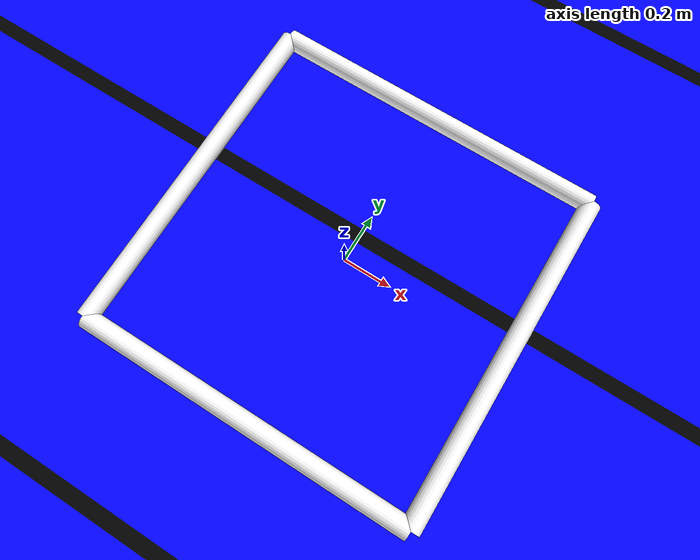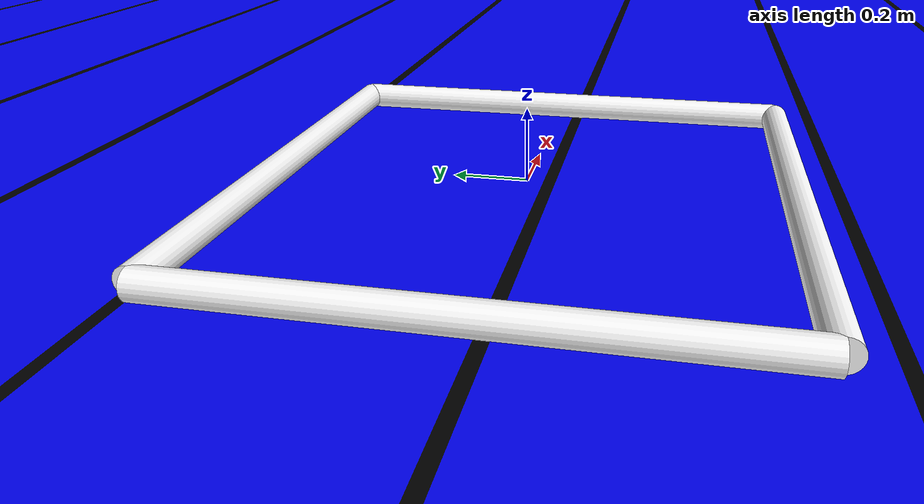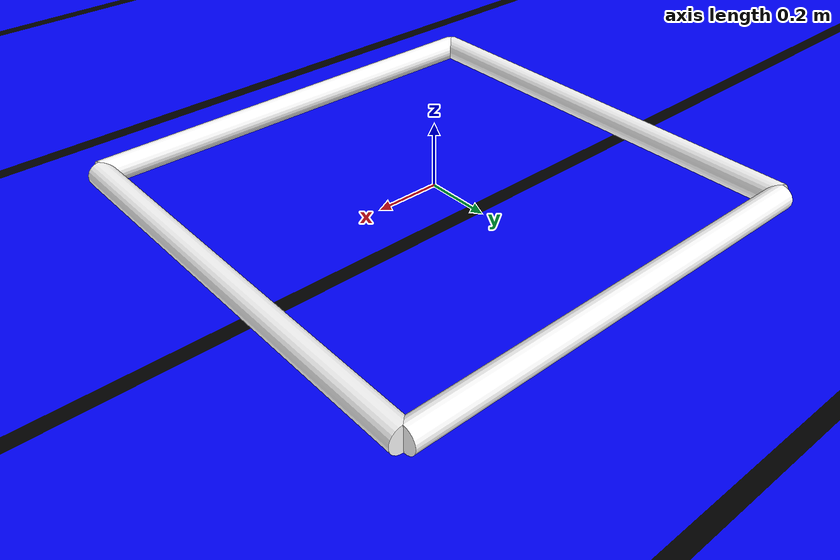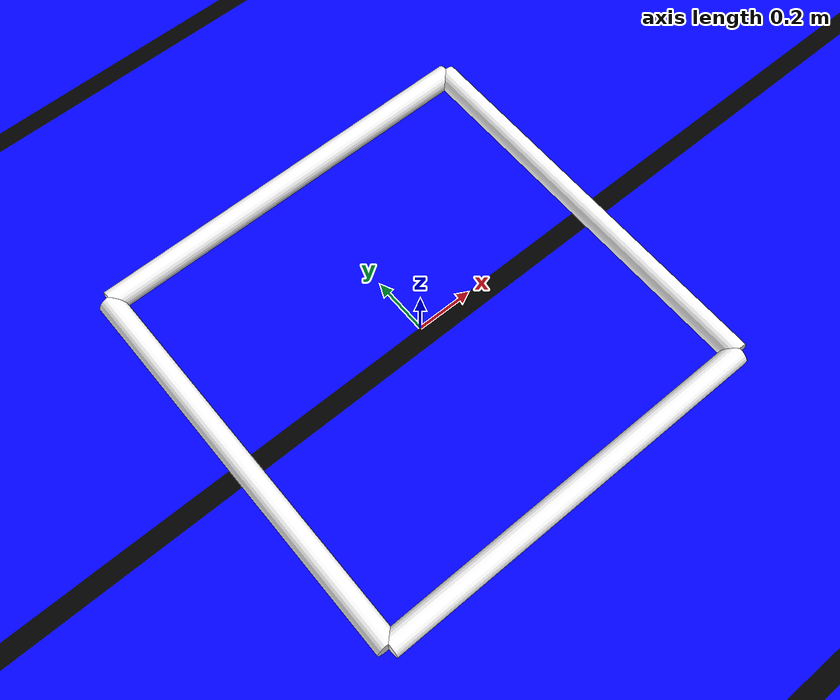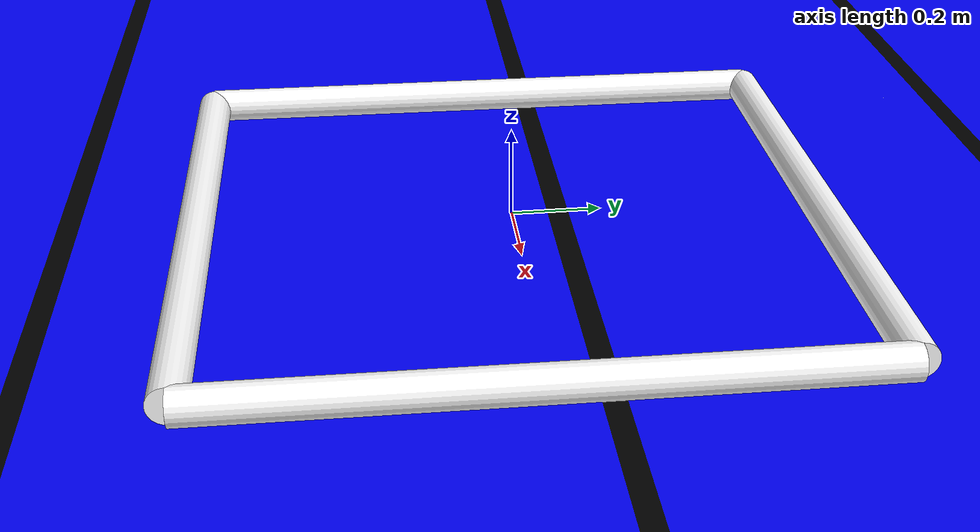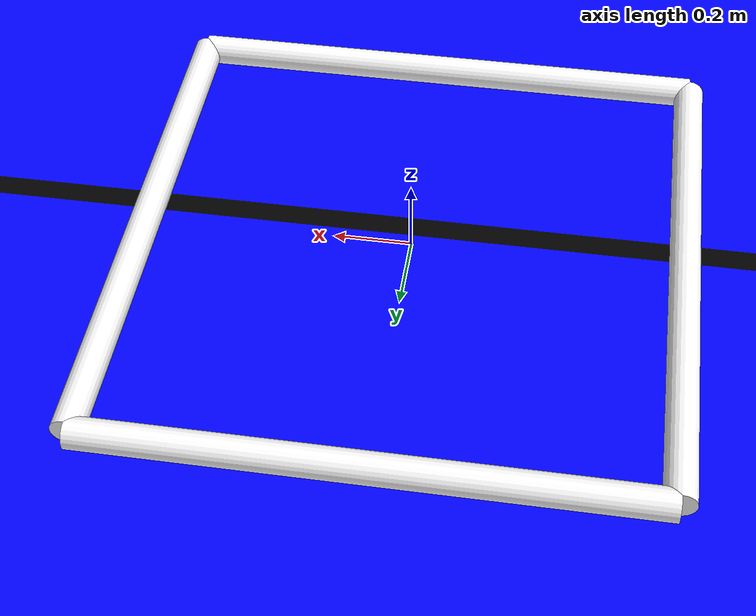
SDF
<sdf version="1.5">
 <world name="sauvc">
  <include><uri>model://sun</uri></include>
  <model name="sauvc pool"><include><uri>model://sauvc pool</uri><pose>0 0 -1.4 0 0 0</pose></include></model>
  <model name="starting_zone"><include><uri>model://starting_zone</uri></include></model>
 </world>
</sdf>

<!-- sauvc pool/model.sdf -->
<sdf version='1.6'>
  <model name='sauvc pool'>
    <link name='pool'>
      <gravity>0</gravity>
      <pose>0 0 0 0 0 0</pose>
      <collision name ='pool_collision'>
        <geometry>
          <mesh>
            <uri>model://sauvc pool/meshes/pool.dae</uri>
          </mesh>
        </geometry>
      </collision>
      <visual name='pool_visual'>
        <geometry>
          <mesh>
            <uri>model://sauvc pool/meshes/pool.dae</uri>
          </mesh>
        </geometry>
      </visual>
    </link>
    <static>true</static>
  </model>
</sdf>

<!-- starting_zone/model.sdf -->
<sdf version="1.7">

  <!-- Starting zone (four white posts forming a 1.4 m x 1.4 m square) -->
  <model name="starting_zone">
    <pose>0 0 0 0 0 0</pose>
    <static>1</static>

    <link name="post_front_left">
      <pose>-0.7 0 0 1.5708 0 0</pose>
      <visual name="visual">
        <geometry>
          <cylinder>
            <radius>0.04</radius>
            <length>1.4</length>
          </cylinder>
        </geometry>
        <material>
          <ambient>1 1 1 1</ambient>
          <diffuse>1 1 1 1</diffuse>
        </material>
      </visual>
    </link>

    <link name="post_front_right">
      <pose>0.7 0 0 1.5708 0 0</pose>
      <visual name="visual">
        <geometry>
          <cylinder>
            <radius>0.04</radius>
            <length>1.4</length>
          </cylinder>
        </geometry>
        <material>
          <ambient>1 1 1 1</ambient>
          <diffuse>1 1 1 1</diffuse>
        </material>
      </visual>
    </link>

    <link name="post_back_left">
      <pose>0 -0.7 0 0 1.5708 0</pose>
      <visual name="visual">
        <geometry>
          <cylinder>
            <radius>0.04</radius>
            <length>1.4</length>
          </cylinder>
        </geometry>
        <material>
          <ambient>1 1 1 1</ambient>
          <diffuse>1 1 1 1</diffuse>
        </material>
      </visual>
    </link>

    <link name="post_back_right">
      <pose>0 0.7 0 0 1.5708 0</pose>
      <visual name="visual">
        <geometry>
          <cylinder>
            <radius>0.04</radius>
            <length>1.4</length>
          </cylinder>
        </geometry>
        <material>
          <ambient>1 1 1 1</ambient>
          <diffuse>1 1 1 1</diffuse>
        </material>
      </visual>
    </link>
  </model>

</sdf>
